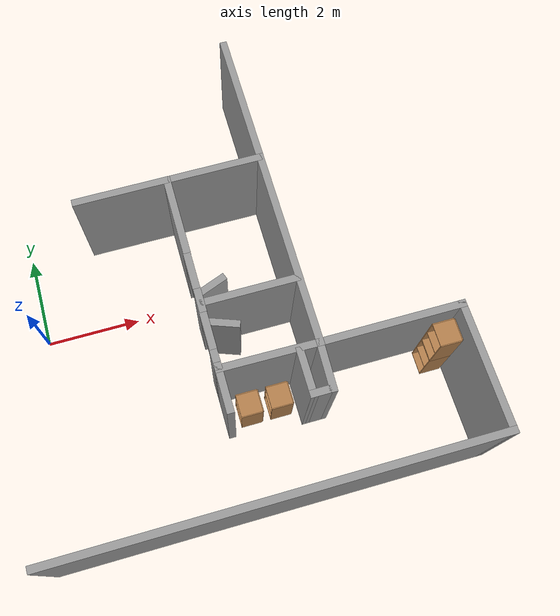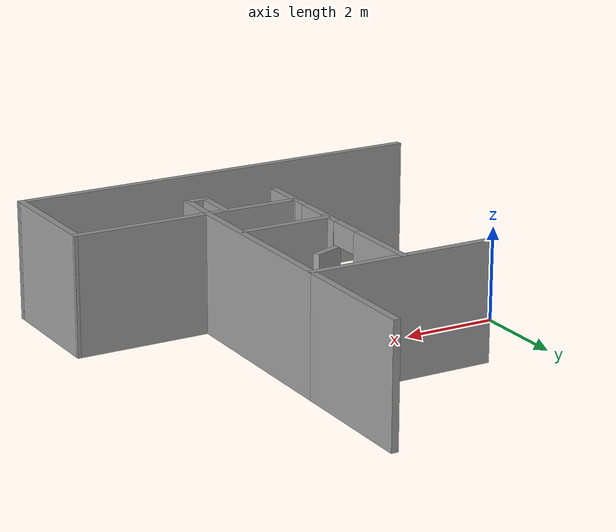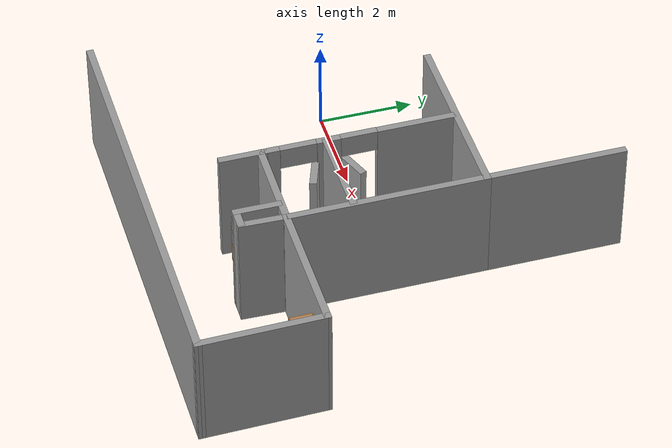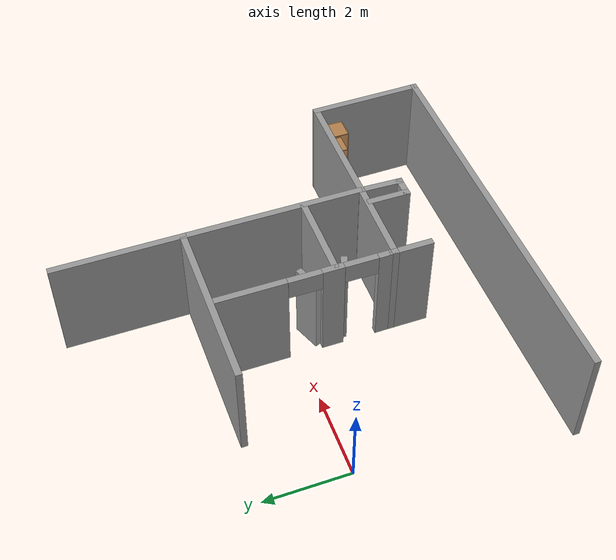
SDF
<sdf version="1.7">
 <world name="default">
  <model name="demo_clean">
   <link name="Wall_10">
    <pose>5.30351 3.31618 0 0 0 -1.5708</pose>
    <visual name="Wall_10_Visual">
     <pose>0 0 1.25 0 -0 0</pose>
     <geometry><box><size>3 0.15 2.5</size></box></geometry>
     <material>
      <script><uri>file://media/materials/scripts/gazebo.material</uri><name>Gazebo/Grey</name></script>
      <ambient>1 1 1 1</ambient>
      <shader type="pixel"/>
     </material>
     <meta><layer>0</layer></meta>
    </visual>
    <collision name="Wall_10_Collision">
     <pose>0 0 1.25 0 -0 0</pose>
     <geometry><box><size>3 0.15 2.5</size></box></geometry>
     <surface>
      <friction>
       <ode><mu>1</mu><mu2>1</mu2><fdir1>0 0 0</fdir1><slip1>0</slip1><slip2>0</slip2></ode>
       <torsional>
        <coefficient>1</coefficient>
        <patch_radius>0</patch_radius>
        <surface_radius>0</surface_radius>
        <use_patch_radius>1</use_patch_radius>
        <ode><slip>0</slip></ode>
       </torsional>
      </friction>
      <bounce><restitution_coefficient>0</restitution_coefficient><threshold>1e+06</threshold></bounce>
      <contact>
       <collide_without_contact>0</collide_without_contact>
       <collide_without_contact_bitmask>1</collide_without_contact_bitmask>
       <collide_bitmask>1</collide_bitmask>
       <ode>
        <soft_cfm>0</soft_cfm>
        <soft_erp>0.2</soft_erp>
        <kp>1e+13</kp>
        <kd>1</kd>
        <max_vel>0.01</max_vel>
        <min_depth>0</min_depth>
       </ode>
       <bullet>
        <split_impulse>1</split_impulse>
        <split_impulse_penetration_threshold>-0.01</split_impulse_penetration_threshold>
        <soft_cfm>0</soft_cfm>
        <soft_erp>0.2</soft_erp>
        <kp>1e+13</kp>
        <kd>1</kd>
       </bullet>
      </contact>
     </surface>
    </collision>
   </link>
   <link name="Wall_11">
    <pose>3.37851 1.89118 0 0 -0 3.14159</pose>
    <visual name="Wall_11_Visual">
     <pose>0 0 1.25 0 -0 0</pose>
     <geometry><box><size>4 0.15 2.5</size></box></geometry>
     <material>
      <script><uri>file://media/materials/scripts/gazebo.material</uri><name>Gazebo/Grey</name></script>
      <ambient>1 1 1 1</ambient>
      <shader type="pixel"/>
     </material>
     <meta><layer>0</layer></meta>
    </visual>
    <collision name="Wall_11_Collision">
     <pose>0 0 1.25 0 -0 0</pose>
     <geometry><box><size>4 0.15 2.5</size></box></geometry>
     <surface>
      <friction>
       <ode><mu>1</mu><mu2>1</mu2><fdir1>0 0 0</fdir1><slip1>0</slip1><slip2>0</slip2></ode>
       <torsional>
        <coefficient>1</coefficient>
        <patch_radius>0</patch_radius>
        <surface_radius>0</surface_radius>
        <use_patch_radius>1</use_patch_radius>
        <ode><slip>0</slip></ode>
       </torsional>
      </friction>
      <bounce><restitution_coefficient>0</restitution_coefficient><threshold>1e+06</threshold></bounce>
      <contact>
       <collide_without_contact>0</collide_without_contact>
       <collide_without_contact_bitmask>1</collide_without_contact_bitmask>
       <collide_bitmask>1</collide_bitmask>
       <ode>
        <soft_cfm>0</soft_cfm>
        <soft_erp>0.2</soft_erp>
        <kp>1e+13</kp>
        <kd>1</kd>
        <max_vel>0.01</max_vel>
        <min_depth>0</min_depth>
       </ode>
       <bullet>
        <split_impulse>1</split_impulse>
        <split_impulse_penetration_threshold>-0.01</split_impulse_penetration_threshold>
        <soft_cfm>0</soft_cfm>
        <soft_erp>0.2</soft_erp>
        <kp>1e+13</kp>
        <kd>1</kd>
       </bullet>
      </contact>
     </surface>
    </collision>
   </link>
   <link name="Wall_13">
    <pose>5.30351 -0.158824 0 0 0 -1.5708</pose>
    <visual name="Wall_13_Visual">
     <pose>0 0 1.25 0 -0 0</pose>
     <geometry><box><size>4.25 0.15 2.5</size></box></geometry>
     <material>
      <script><uri>file://media/materials/scripts/gazebo.material</uri><name>Gazebo/Grey</name></script>
      <ambient>1 1 1 1</ambient>
      <shader type="pixel"/>
     </material>
     <meta><layer>0</layer></meta>
    </visual>
    <collision name="Wall_13_Collision">
     <pose>0 0 1.25 0 -0 0</pose>
     <geometry><box><size>4.25 0.15 2.5</size></box></geometry>
     <surface>
      <friction>
       <ode><mu>1</mu><mu2>1</mu2><fdir1>0 0 0</fdir1><slip1>0</slip1><slip2>0</slip2></ode>
       <torsional>
        <coefficient>1</coefficient>
        <patch_radius>0</patch_radius>
        <surface_radius>0</surface_radius>
        <use_patch_radius>1</use_patch_radius>
        <ode><slip>0</slip></ode>
       </torsional>
      </friction>
      <bounce><restitution_coefficient>0</restitution_coefficient><threshold>1e+06</threshold></bounce>
      <contact>
       <collide_without_contact>0</collide_without_contact>
       <collide_without_contact_bitmask>1</collide_without_contact_bitmask>
       <collide_bitmask>1</collide_bitmask>
       <ode>
        <soft_cfm>0</soft_cfm>
        <soft_erp>0.2</soft_erp>
        <kp>1e+13</kp>
        <kd>1</kd>
        <max_vel>0.01</max_vel>
        <min_depth>0</min_depth>
       </ode>
       <bullet>
        <split_impulse>1</split_impulse>
        <split_impulse_penetration_threshold>-0.01</split_impulse_penetration_threshold>
        <soft_cfm>0</soft_cfm>
        <soft_erp>0.2</soft_erp>
        <kp>1e+13</kp>
        <kd>1</kd>
       </bullet>
      </contact>
     </surface>
    </collision>
   </link>
   <link name="Wall_14">
    <pose>6.72851 -2.20882 0 0 -0 0</pose>
    <visual name="Wall_14_Visual">
     <pose>0 0 1.25 0 -0 0</pose>
     <geometry><box><size>3 0.15 2.5</size></box></geometry>
     <material>
      <script><uri>file://media/materials/scripts/gazebo.material</uri><name>Gazebo/Grey</name></script>
      <ambient>1 1 1 1</ambient>
      <shader type="pixel"/>
     </material>
     <meta><layer>0</layer></meta>
    </visual>
    <collision name="Wall_14_Collision">
     <pose>0 0 1.25 0 -0 0</pose>
     <geometry><box><size>3 0.15 2.5</size></box></geometry>
     <surface>
      <friction>
       <ode><mu>1</mu><mu2>1</mu2><fdir1>0 0 0</fdir1><slip1>0</slip1><slip2>0</slip2></ode>
       <torsional>
        <coefficient>1</coefficient>
        <patch_radius>0</patch_radius>
        <surface_radius>0</surface_radius>
        <use_patch_radius>1</use_patch_radius>
        <ode><slip>0</slip></ode>
       </torsional>
      </friction>
      <bounce><restitution_coefficient>0</restitution_coefficient><threshold>1e+06</threshold></bounce>
      <contact>
       <collide_without_contact>0</collide_without_contact>
       <collide_without_contact_bitmask>1</collide_without_contact_bitmask>
       <collide_bitmask>1</collide_bitmask>
       <ode>
        <soft_cfm>0</soft_cfm>
        <soft_erp>0.2</soft_erp>
        <kp>1e+13</kp>
        <kd>1</kd>
        <max_vel>0.01</max_vel>
        <min_depth>0</min_depth>
       </ode>
       <bullet>
        <split_impulse>1</split_impulse>
        <split_impulse_penetration_threshold>-0.01</split_impulse_penetration_threshold>
        <soft_cfm>0</soft_cfm>
        <soft_erp>0.2</soft_erp>
        <kp>1e+13</kp>
        <kd>1</kd>
       </bullet>
      </contact>
     </surface>
    </collision>
   </link>
   <link name="Wall_15">
    <pose>8.16988 -3.47452 0 0 0 -1.55787</pose>
    <visual name="Wall_15_Visual">
     <pose>0 0 1.25 0 -0 0</pose>
     <geometry><box><size>2.6816 0.15 2.5</size></box></geometry>
     <material>
      <script><uri>file://media/materials/scripts/gazebo.material</uri><name>Gazebo/Grey</name></script>
      <ambient>1 1 1 1</ambient>
      <shader type="pixel"/>
     </material>
     <meta><layer>0</layer></meta>
    </visual>
    <collision name="Wall_15_Collision">
     <pose>0 0 1.25 0 -0 0</pose>
     <geometry><box><size>2.6816 0.15 2.5</size></box></geometry>
     <surface>
      <friction>
       <ode><mu>1</mu><mu2>1</mu2><fdir1>0 0 0</fdir1><slip1>0</slip1><slip2>0</slip2></ode>
       <torsional>
        <coefficient>1</coefficient>
        <patch_radius>0</patch_radius>
        <surface_radius>0</surface_radius>
        <use_patch_radius>1</use_patch_radius>
        <ode><slip>0</slip></ode>
       </torsional>
      </friction>
      <bounce><restitution_coefficient>0</restitution_coefficient><threshold>1e+06</threshold></bounce>
      <contact>
       <collide_without_contact>0</collide_without_contact>
       <collide_without_contact_bitmask>1</collide_without_contact_bitmask>
       <collide_bitmask>1</collide_bitmask>
       <ode>
        <soft_cfm>0</soft_cfm>
        <soft_erp>0.2</soft_erp>
        <kp>1e+13</kp>
        <kd>1</kd>
        <max_vel>0.01</max_vel>
        <min_depth>0</min_depth>
       </ode>
       <bullet>
        <split_impulse>1</split_impulse>
        <split_impulse_penetration_threshold>-0.01</split_impulse_penetration_threshold>
        <soft_cfm>0</soft_cfm>
        <soft_erp>0.2</soft_erp>
        <kp>1e+13</kp>
        <kd>1</kd>
       </bullet>
      </contact>
     </surface>
    </collision>
   </link>
   <link name="Wall_16">
    <pose>3.76125 -4.74021 0 0 -0 3.14159</pose>
    <visual name="Wall_16_Visual">
     <pose>0 0 1.25 0 -0 0</pose>
     <geometry><box><size>9 0.15 2.5</size></box></geometry>
     <material>
      <script><uri>file://media/materials/scripts/gazebo.material</uri><name>Gazebo/Grey</name></script>
      <ambient>1 1 1 1</ambient>
      <shader type="pixel"/>
     </material>
     <meta><layer>0</layer></meta>
    </visual>
    <collision name="Wall_16_Collision">
     <pose>0 0 1.25 0 -0 0</pose>
     <geometry><box><size>9 0.15 2.5</size></box></geometry>
     <surface>
      <friction>
       <ode><mu>1</mu><mu2>1</mu2><fdir1>0 0 0</fdir1><slip1>0</slip1><slip2>0</slip2></ode>
       <torsional>
        <coefficient>1</coefficient>
        <patch_radius>0</patch_radius>
        <surface_radius>0</surface_radius>
        <use_patch_radius>1</use_patch_radius>
        <ode><slip>0</slip></ode>
       </torsional>
      </friction>
      <bounce><restitution_coefficient>0</restitution_coefficient><threshold>1e+06</threshold></bounce>
      <contact>
       <collide_without_contact>0</collide_without_contact>
       <collide_without_contact_bitmask>1</collide_without_contact_bitmask>
       <collide_bitmask>1</collide_bitmask>
       <ode>
        <soft_cfm>0</soft_cfm>
        <soft_erp>0.2</soft_erp>
        <kp>1e+13</kp>
        <kd>1</kd>
        <max_vel>0.01</max_vel>
        <min_depth>0</min_depth>
       </ode>
       <bullet>
        <split_impulse>1</split_impulse>
        <split_impulse_penetration_threshold>-0.01</split_impulse_penetration_threshold>
        <soft_cfm>0</soft_cfm>
        <soft_erp>0.2</soft_erp>
        <kp>1e+13</kp>
        <kd>1</kd>
       </bullet>
      </contact>
     </surface>
    </collision>
   </link>
   <link name="Wall_21_clone_0_clone_0_clone_clone_clone_clone_clone_clone_clone_clone">
    <pose>3.68306 -1.18793 -0.23202 0 -0 2.79384</pose>
    <inertial>
     <inertia><ixx>0</ixx><ixy>0</ixy><ixz>0</ixz><iyy>0</iyy><iyz>0</iyz><izz>0</izz></inertia>
     <mass>0</mass>
    </inertial>
    <gravity>0</gravity>
    <visual name="Wall_21_Visual">
     <pose>0 0 1.25 0 -0 0</pose>
     <geometry><box><size>0.663949 0.15 1.96033</size></box></geometry>
     <material>
      <script><uri>file://media/materials/scripts/gazebo.material</uri><name>Gazebo/Grey</name></script>
      <ambient>1 1 1 1</ambient>
      <shader type="pixel"><normal_map>__default__</normal_map></shader>
      <diffuse>0.7 0.7 0.7 1</diffuse>
      <specular>0.01 0.01 0.01 1</specular>
      <emissive>0 0 0 1</emissive>
     </material>
     <meta><layer>0</layer></meta>
    </visual>
    <collision name="Wall_21_Collision">
     <pose>0 0 1.25 0 -0 0</pose>
     <geometry><box><size>0.663949 0.15 1.96033</size></box></geometry>
     <surface>
      <friction>
       <ode><mu>1</mu><mu2>1</mu2><fdir1>0 0 0</fdir1><slip1>0</slip1><slip2>0</slip2></ode>
       <torsional>
        <coefficient>1</coefficient>
        <patch_radius>0</patch_radius>
        <surface_radius>0</surface_radius>
        <use_patch_radius>1</use_patch_radius>
        <ode><slip>0</slip></ode>
       </torsional>
      </friction>
      <bounce><restitution_coefficient>0</restitution_coefficient><threshold>1e+06</threshold></bounce>
      <contact>
       <collide_without_contact>0</collide_without_contact>
       <collide_without_contact_bitmask>1</collide_without_contact_bitmask>
       <collide_bitmask>1</collide_bitmask>
       <ode>
        <soft_cfm>0</soft_cfm>
        <soft_erp>0.2</soft_erp>
        <kp>1e+13</kp>
        <kd>1</kd>
        <max_vel>0.01</max_vel>
        <min_depth>0</min_depth>
       </ode>
       <bullet>
        <split_impulse>1</split_impulse>
        <split_impulse_penetration_threshold>-0.01</split_impulse_penetration_threshold>
        <soft_cfm>0</soft_cfm>
        <soft_erp>0.2</soft_erp>
        <kp>1e+13</kp>
        <kd>1</kd>
       </bullet>
      </contact>
     </surface>
    </collision>
   </link>
   <link name="Wall_21_clone_0_clone_0_clone_clone_clone_clone_clone_clone_clone_clone_clone_clone">
    <pose>3.65792 -0.364043 -0.23202 0 0 -2.77941</pose>
    <inertial>
     <inertia><ixx>0</ixx><ixy>0</ixy><ixz>0</ixz><iyy>0</iyy><iyz>0</iyz><izz>0</izz></inertia>
     <mass>0</mass>
    </inertial>
    <gravity>0</gravity>
    <visual name="Wall_21_Visual">
     <pose>0 0 1.25 0 -0 0</pose>
     <geometry><box><size>0.663949 0.15 1.96033</size></box></geometry>
     <material>
      <script><uri>file://media/materials/scripts/gazebo.material</uri><name>Gazebo/Grey</name></script>
      <ambient>1 1 1 1</ambient>
      <shader type="pixel"><normal_map>__default__</normal_map></shader>
      <diffuse>0.7 0.7 0.7 1</diffuse>
      <specular>0.01 0.01 0.01 1</specular>
      <emissive>0 0 0 1</emissive>
     </material>
     <meta><layer>0</layer></meta>
    </visual>
    <collision name="Wall_21_Collision">
     <pose>0 0 1.25 0 -0 0</pose>
     <geometry><box><size>0.663949 0.15 1.96033</size></box></geometry>
     <surface>
      <friction>
       <ode><mu>1</mu><mu2>1</mu2><fdir1>0 0 0</fdir1><slip1>0</slip1><slip2>0</slip2></ode>
       <torsional>
        <coefficient>1</coefficient>
        <patch_radius>0</patch_radius>
        <surface_radius>0</surface_radius>
        <use_patch_radius>1</use_patch_radius>
        <ode><slip>0</slip></ode>
       </torsional>
      </friction>
      <bounce><restitution_coefficient>0</restitution_coefficient><threshold>1e+06</threshold></bounce>
      <contact>
       <collide_without_contact>0</collide_without_contact>
       <collide_without_contact_bitmask>1</collide_without_contact_bitmask>
       <collide_bitmask>1</collide_bitmask>
       <ode>
        <soft_cfm>0</soft_cfm>
        <soft_erp>0.2</soft_erp>
        <kp>1e+13</kp>
        <kd>1</kd>
        <max_vel>0.01</max_vel>
        <min_depth>0</min_depth>
       </ode>
       <bullet>
        <split_impulse>1</split_impulse>
        <split_impulse_penetration_threshold>-0.01</split_impulse_penetration_threshold>
        <soft_cfm>0</soft_cfm>
        <soft_erp>0.2</soft_erp>
        <kp>1e+13</kp>
        <kd>1</kd>
       </bullet>
      </contact>
     </surface>
    </collision>
   </link>
   <link name="Wall_28_clone_clone_clone_clone">
    <pose>3.33099 -1.42343 1.01168 0 0 -1.57004</pose>
    <inertial>
     <inertia><ixx>0</ixx><ixy>0</ixy><ixz>0</ixz><iyy>0</iyy><iyz>0</iyz><izz>0</izz></inertia>
     <mass>0</mass>
    </inertial>
    <gravity>0</gravity>
    <visual name="Wall_28_Visual">
     <pose>0 0 1.25 0 -0 0</pose>
     <geometry><box><size>0.765639 0.15 0.476648</size></box></geometry>
     <material>
      <script><uri>file://media/materials/scripts/gazebo.material</uri><name>Gazebo/Grey</name></script>
      <ambient>1 1 1 1</ambient>
      <shader type="pixel"><normal_map>__default__</normal_map></shader>
     </material>
     <meta><layer>0</layer></meta>
    </visual>
    <collision name="Wall_28_Collision">
     <pose>0 0 1.25 0 -0 0</pose>
     <geometry><box><size>0.765639 0.15 0.476648</size></box></geometry>
     <surface>
      <friction>
       <ode><mu>1</mu><mu2>1</mu2><fdir1>0 0 0</fdir1><slip1>0</slip1><slip2>0</slip2></ode>
       <torsional>
        <coefficient>1</coefficient>
        <patch_radius>0</patch_radius>
        <surface_radius>0</surface_radius>
        <use_patch_radius>1</use_patch_radius>
        <ode><slip>0</slip></ode>
       </torsional>
      </friction>
      <bounce><restitution_coefficient>0</restitution_coefficient><threshold>1e+06</threshold></bounce>
      <contact>
       <collide_without_contact>0</collide_without_contact>
       <collide_without_contact_bitmask>1</collide_without_contact_bitmask>
       <collide_bitmask>1</collide_bitmask>
       <ode>
        <soft_cfm>0</soft_cfm>
        <soft_erp>0.2</soft_erp>
        <kp>1e+13</kp>
        <kd>1</kd>
        <max_vel>0.01</max_vel>
        <min_depth>0</min_depth>
       </ode>
       <bullet>
        <split_impulse>1</split_impulse>
        <split_impulse_penetration_threshold>-0.01</split_impulse_penetration_threshold>
        <soft_cfm>0</soft_cfm>
        <soft_erp>0.2</soft_erp>
        <kp>1e+13</kp>
        <kd>1</kd>
       </bullet>
      </contact>
     </surface>
    </collision>
   </link>
   <link name="Wall_28_clone_clone_clone_clone_clone">
    <pose>3.33099 -0.160303 1.01168 0 0 -1.57004</pose>
    <inertial>
     <inertia><ixx>0</ixx><ixy>0</ixy><ixz>0</ixz><iyy>0</iyy><iyz>0</iyz><izz>0</izz></inertia>
     <mass>0</mass>
    </inertial>
    <gravity>0</gravity>
    <visual name="Wall_28_Visual">
     <pose>0 0 1.25 0 -0 0</pose>
     <geometry><box><size>0.765639 0.15 0.476648</size></box></geometry>
     <material>
      <script><uri>file://media/materials/scripts/gazebo.material</uri><name>Gazebo/Grey</name></script>
      <ambient>1 1 1 1</ambient>
      <shader type="pixel"><normal_map>__default__</normal_map></shader>
     </material>
     <meta><layer>0</layer></meta>
    </visual>
    <collision name="Wall_28_Collision">
     <pose>0 0 1.25 0 -0 0</pose>
     <geometry><box><size>0.765639 0.15 0.476648</size></box></geometry>
     <surface>
      <friction>
       <ode><mu>1</mu><mu2>1</mu2><fdir1>0 0 0</fdir1><slip1>0</slip1><slip2>0</slip2></ode>
       <torsional>
        <coefficient>1</coefficient>
        <patch_radius>0</patch_radius>
        <surface_radius>0</surface_radius>
        <use_patch_radius>1</use_patch_radius>
        <ode><slip>0</slip></ode>
       </torsional>
      </friction>
      <bounce><restitution_coefficient>0</restitution_coefficient><threshold>1e+06</threshold></bounce>
      <contact>
       <collide_without_contact>0</collide_without_contact>
       <collide_without_contact_bitmask>1</collide_without_contact_bitmask>
       <collide_bitmask>1</collide_bitmask>
       <ode>
        <soft_cfm>0</soft_cfm>
        <soft_erp>0.2</soft_erp>
        <kp>1e+13</kp>
        <kd>1</kd>
        <max_vel>0.01</max_vel>
        <min_depth>0</min_depth>
       </ode>
       <bullet>
        <split_impulse>1</split_impulse>
        <split_impulse_penetration_threshold>-0.01</split_impulse_penetration_threshold>
        <soft_cfm>0</soft_cfm>
        <soft_erp>0.2</soft_erp>
        <kp>1e+13</kp>
        <kd>1</kd>
       </bullet>
      </contact>
     </surface>
    </collision>
   </link>
   <link name="Wall_30">
    <pose>3.33603 -0.791518 0 0 0 -1.5708</pose>
    <visual name="Wall_30_Visual">
     <pose>0 0 1.25 0 -0 0</pose>
     <geometry><box><size>0.5 0.15 2.5</size></box></geometry>
     <material>
      <script><uri>file://media/materials/scripts/gazebo.material</uri><name>Gazebo/Grey</name></script>
      <ambient>1 1 1 1</ambient>
      <shader type="pixel"/>
     </material>
     <meta><layer>0</layer></meta>
    </visual>
    <collision name="Wall_30_Collision">
     <pose>0 0 1.25 0 -0 0</pose>
     <geometry><box><size>0.5 0.15 2.5</size></box></geometry>
     <surface>
      <friction>
       <ode><mu>1</mu><mu2>1</mu2><fdir1>0 0 0</fdir1><slip1>0</slip1><slip2>0</slip2></ode>
       <torsional>
        <coefficient>1</coefficient>
        <patch_radius>0</patch_radius>
        <surface_radius>0</surface_radius>
        <use_patch_radius>1</use_patch_radius>
        <ode><slip>0</slip></ode>
       </torsional>
      </friction>
      <bounce><restitution_coefficient>0</restitution_coefficient><threshold>1e+06</threshold></bounce>
      <contact>
       <collide_without_contact>0</collide_without_contact>
       <collide_without_contact_bitmask>1</collide_without_contact_bitmask>
       <collide_bitmask>1</collide_bitmask>
       <ode>
        <soft_cfm>0</soft_cfm>
        <soft_erp>0.2</soft_erp>
        <kp>1e+13</kp>
        <kd>1</kd>
        <max_vel>0.01</max_vel>
        <min_depth>0</min_depth>
       </ode>
       <bullet>
        <split_impulse>1</split_impulse>
        <split_impulse_penetration_threshold>-0.01</split_impulse_penetration_threshold>
        <soft_cfm>0</soft_cfm>
        <soft_erp>0.2</soft_erp>
        <kp>1e+13</kp>
        <kd>1</kd>
       </bullet>
      </contact>
     </surface>
    </collision>
   </link>
   <link name="Wall_33">
    <pose>4.32187 -0.846909 0 0 -0 3.14159</pose>
    <visual name="Wall_33_Visual">
     <pose>0 0 1.25 0 -0 0</pose>
     <geometry><box><size>2 0.15 2.5</size></box></geometry>
     <material>
      <script><uri>file://media/materials/scripts/gazebo.material</uri><name>Gazebo/Grey</name></script>
      <ambient>1 1 1 1</ambient>
      <shader type="pixel"/>
     </material>
     <meta><layer>0</layer></meta>
    </visual>
    <collision name="Wall_33_Collision">
     <pose>0 0 1.25 0 -0 0</pose>
     <geometry><box><size>2 0.15 2.5</size></box></geometry>
     <surface>
      <friction>
       <ode><mu>1</mu><mu2>1</mu2><fdir1>0 0 0</fdir1><slip1>0</slip1><slip2>0</slip2></ode>
       <torsional>
        <coefficient>1</coefficient>
        <patch_radius>0</patch_radius>
        <surface_radius>0</surface_radius>
        <use_patch_radius>1</use_patch_radius>
        <ode><slip>0</slip></ode>
       </torsional>
      </friction>
      <bounce><restitution_coefficient>0</restitution_coefficient><threshold>1e+06</threshold></bounce>
      <contact>
       <collide_without_contact>0</collide_without_contact>
       <collide_without_contact_bitmask>1</collide_without_contact_bitmask>
       <collide_bitmask>1</collide_bitmask>
       <ode>
        <soft_cfm>0</soft_cfm>
        <soft_erp>0.2</soft_erp>
        <kp>1e+13</kp>
        <kd>1</kd>
        <max_vel>0.01</max_vel>
        <min_depth>0</min_depth>
       </ode>
       <bullet>
        <split_impulse>1</split_impulse>
        <split_impulse_penetration_threshold>-0.01</split_impulse_penetration_threshold>
        <soft_cfm>0</soft_cfm>
        <soft_erp>0.2</soft_erp>
        <kp>1e+13</kp>
        <kd>1</kd>
       </bullet>
      </contact>
     </surface>
    </collision>
   </link>
   <link name="Wall_35">
    <pose>4.31686 -2.19973 0 0 -0 3.13123</pose>
    <visual name="Wall_35_Visual">
     <pose>0 0 1.25 0 -0 0</pose>
     <geometry><box><size>2.12444 0.15 2.5</size></box></geometry>
     <material>
      <script><uri>file://media/materials/scripts/gazebo.material</uri><name>Gazebo/Grey</name></script>
      <ambient>1 1 1 1</ambient>
      <shader type="pixel"/>
     </material>
     <meta><layer>0</layer></meta>
    </visual>
    <collision name="Wall_35_Collision">
     <pose>0 0 1.25 0 -0 0</pose>
     <geometry><box><size>2.12444 0.15 2.5</size></box></geometry>
     <surface>
      <friction>
       <ode><mu>1</mu><mu2>1</mu2><fdir1>0 0 0</fdir1><slip1>0</slip1><slip2>0</slip2></ode>
       <torsional>
        <coefficient>1</coefficient>
        <patch_radius>0</patch_radius>
        <surface_radius>0</surface_radius>
        <use_patch_radius>1</use_patch_radius>
        <ode><slip>0</slip></ode>
       </torsional>
      </friction>
      <bounce><restitution_coefficient>0</restitution_coefficient><threshold>1e+06</threshold></bounce>
      <contact>
       <collide_without_contact>0</collide_without_contact>
       <collide_without_contact_bitmask>1</collide_without_contact_bitmask>
       <collide_bitmask>1</collide_bitmask>
       <ode>
        <soft_cfm>0</soft_cfm>
        <soft_erp>0.2</soft_erp>
        <kp>1e+13</kp>
        <kd>1</kd>
        <max_vel>0.01</max_vel>
        <min_depth>0</min_depth>
       </ode>
       <bullet>
        <split_impulse>1</split_impulse>
        <split_impulse_penetration_threshold>-0.01</split_impulse_penetration_threshold>
        <soft_cfm>0</soft_cfm>
        <soft_erp>0.2</soft_erp>
        <kp>1e+13</kp>
        <kd>1</kd>
       </bullet>
      </contact>
     </surface>
    </collision>
   </link>
   <link name="Wall_40">
    <pose>4.89119 -2.69073 0 0 0 -1.57324</pose>
    <visual name="Wall_40_Visual">
     <pose>0 0 1.25 0 -0 0</pose>
     <geometry><box><size>1 0.15 2.5</size></box></geometry>
     <material>
      <script><uri>file://media/materials/scripts/gazebo.material</uri><name>Gazebo/Grey</name></script>
      <ambient>1 1 1 1</ambient>
      <shader type="pixel"/>
     </material>
     <meta><layer>0</layer></meta>
    </visual>
    <collision name="Wall_40_Collision">
     <pose>0 0 1.25 0 -0 0</pose>
     <geometry><box><size>1 0.15 2.5</size></box></geometry>
     <surface>
      <friction>
       <ode><mu>1</mu><mu2>1</mu2><fdir1>0 0 0</fdir1><slip1>0</slip1><slip2>0</slip2></ode>
       <torsional>
        <coefficient>1</coefficient>
        <patch_radius>0</patch_radius>
        <surface_radius>0</surface_radius>
        <use_patch_radius>1</use_patch_radius>
        <ode><slip>0</slip></ode>
       </torsional>
      </friction>
      <bounce><restitution_coefficient>0</restitution_coefficient><threshold>1e+06</threshold></bounce>
      <contact>
       <collide_without_contact>0</collide_without_contact>
       <collide_without_contact_bitmask>1</collide_without_contact_bitmask>
       <collide_bitmask>1</collide_bitmask>
       <ode>
        <soft_cfm>0</soft_cfm>
        <soft_erp>0.2</soft_erp>
        <kp>1e+13</kp>
        <kd>1</kd>
        <max_vel>0.01</max_vel>
        <min_depth>0</min_depth>
       </ode>
       <bullet>
        <split_impulse>1</split_impulse>
        <split_impulse_penetration_threshold>-0.01</split_impulse_penetration_threshold>
        <soft_cfm>0</soft_cfm>
        <soft_erp>0.2</soft_erp>
        <kp>1e+13</kp>
        <kd>1</kd>
       </bullet>
      </contact>
     </surface>
    </collision>
   </link>
   <link name="Wall_41">
    <pose>5.06619 -3.11573 0 0 -0 0</pose>
    <visual name="Wall_41_Visual">
     <pose>0 0 1.25 0 -0 0</pose>
     <geometry><box><size>0.5 0.15 2.5</size></box></geometry>
     <material>
      <script><uri>file://media/materials/scripts/gazebo.material</uri><name>Gazebo/Grey</name></script>
      <ambient>1 1 1 1</ambient>
      <shader type="pixel"/>
     </material>
     <meta><layer>0</layer></meta>
    </visual>
    <collision name="Wall_41_Collision">
     <pose>0 0 1.25 0 -0 0</pose>
     <geometry><box><size>0.5 0.15 2.5</size></box></geometry>
     <surface>
      <friction>
       <ode><mu>1</mu><mu2>1</mu2><fdir1>0 0 0</fdir1><slip1>0</slip1><slip2>0</slip2></ode>
       <torsional>
        <coefficient>1</coefficient>
        <patch_radius>0</patch_radius>
        <surface_radius>0</surface_radius>
        <use_patch_radius>1</use_patch_radius>
        <ode><slip>0</slip></ode>
       </torsional>
      </friction>
      <bounce><restitution_coefficient>0</restitution_coefficient><threshold>1e+06</threshold></bounce>
      <contact>
       <collide_without_contact>0</collide_without_contact>
       <collide_without_contact_bitmask>1</collide_without_contact_bitmask>
       <collide_bitmask>1</collide_bitmask>
       <ode>
        <soft_cfm>0</soft_cfm>
        <soft_erp>0.2</soft_erp>
        <kp>1e+13</kp>
        <kd>1</kd>
        <max_vel>0.01</max_vel>
        <min_depth>0</min_depth>
       </ode>
       <bullet>
        <split_impulse>1</split_impulse>
        <split_impulse_penetration_threshold>-0.01</split_impulse_penetration_threshold>
        <soft_cfm>0</soft_cfm>
        <soft_erp>0.2</soft_erp>
        <kp>1e+13</kp>
        <kd>1</kd>
       </bullet>
      </contact>
     </surface>
    </collision>
   </link>
   <link name="Wall_42">
    <pose>5.28364 -2.66264 0 0 -0 1.53905</pose>
    <visual name="Wall_42_Visual">
     <pose>0 0 1.25 0 -0 0</pose>
     <geometry><box><size>1.05905 0.15 2.5</size></box></geometry>
     <material>
      <script><uri>file://media/materials/scripts/gazebo.material</uri><name>Gazebo/Grey</name></script>
      <ambient>1 1 1 1</ambient>
      <shader type="pixel"/>
     </material>
     <meta><layer>0</layer></meta>
    </visual>
    <collision name="Wall_42_Collision">
     <pose>0 0 1.25 0 -0 0</pose>
     <geometry><box><size>1.05905 0.15 2.5</size></box></geometry>
     <surface>
      <friction>
       <ode><mu>1</mu><mu2>1</mu2><fdir1>0 0 0</fdir1><slip1>0</slip1><slip2>0</slip2></ode>
       <torsional>
        <coefficient>1</coefficient>
        <patch_radius>0</patch_radius>
        <surface_radius>0</surface_radius>
        <use_patch_radius>1</use_patch_radius>
        <ode><slip>0</slip></ode>
       </torsional>
      </friction>
      <bounce><restitution_coefficient>0</restitution_coefficient><threshold>1e+06</threshold></bounce>
      <contact>
       <collide_without_contact>0</collide_without_contact>
       <collide_without_contact_bitmask>1</collide_without_contact_bitmask>
       <collide_bitmask>1</collide_bitmask>
       <ode>
        <soft_cfm>0</soft_cfm>
        <soft_erp>0.2</soft_erp>
        <kp>1e+13</kp>
        <kd>1</kd>
        <max_vel>0.01</max_vel>
        <min_depth>0</min_depth>
       </ode>
       <bullet>
        <split_impulse>1</split_impulse>
        <split_impulse_penetration_threshold>-0.01</split_impulse_penetration_threshold>
        <soft_cfm>0</soft_cfm>
        <soft_erp>0.2</soft_erp>
        <kp>1e+13</kp>
        <kd>1</kd>
       </bullet>
      </contact>
     </surface>
    </collision>
   </link>
   <link name="Wall_46">
    <pose>3.33603 1.08929 0 0 0 -1.5708</pose>
    <visual name="Wall_46_Visual">
     <pose>0 0 1.25 0 -0 0</pose>
     <geometry><box><size>1.75 0.15 2.5</size></box></geometry>
     <material>
      <script><uri>file://media/materials/scripts/gazebo.material</uri><name>Gazebo/Grey</name></script>
      <ambient>1 1 1 1</ambient>
      <shader type="pixel"/>
     </material>
     <meta><layer>0</layer></meta>
    </visual>
    <collision name="Wall_46_Collision">
     <pose>0 0 1.25 0 -0 0</pose>
     <geometry><box><size>1.75 0.15 2.5</size></box></geometry>
     <surface>
      <friction>
       <ode><mu>1</mu><mu2>1</mu2><fdir1>0 0 0</fdir1><slip1>0</slip1><slip2>0</slip2></ode>
       <torsional>
        <coefficient>1</coefficient>
        <patch_radius>0</patch_radius>
        <surface_radius>0</surface_radius>
        <use_patch_radius>1</use_patch_radius>
        <ode><slip>0</slip></ode>
       </torsional>
      </friction>
      <bounce><restitution_coefficient>0</restitution_coefficient><threshold>1e+06</threshold></bounce>
      <contact>
       <collide_without_contact>0</collide_without_contact>
       <collide_without_contact_bitmask>1</collide_without_contact_bitmask>
       <collide_bitmask>1</collide_bitmask>
       <ode>
        <soft_cfm>0</soft_cfm>
        <soft_erp>0.2</soft_erp>
        <kp>1e+13</kp>
        <kd>1</kd>
        <max_vel>0.01</max_vel>
        <min_depth>0</min_depth>
       </ode>
       <bullet>
        <split_impulse>1</split_impulse>
        <split_impulse_penetration_threshold>-0.01</split_impulse_penetration_threshold>
        <soft_cfm>0</soft_cfm>
        <soft_erp>0.2</soft_erp>
        <kp>1e+13</kp>
        <kd>1</kd>
       </bullet>
      </contact>
     </surface>
    </collision>
   </link>
   <link name="Wall_48">
    <pose>3.33073 -2.13943 0 0 -0 0</pose>
    <visual name="Wall_48_Visual">
     <pose>0 0 1.25 0 -0 0</pose>
     <geometry><box><size>0.15 0.15 2.5</size></box></geometry>
     <material>
      <script><uri>file://media/materials/scripts/gazebo.material</uri><name>Gazebo/Grey</name></script>
      <ambient>1 1 1 1</ambient>
      <shader type="pixel"/>
     </material>
     <meta><layer>0</layer></meta>
    </visual>
    <collision name="Wall_48_Collision">
     <pose>0 0 1.25 0 -0 0</pose>
     <geometry><box><size>0.15 0.15 2.5</size></box></geometry>
     <surface>
      <friction>
       <ode><mu>1</mu><mu2>1</mu2><fdir1>0 0 0</fdir1><slip1>0</slip1><slip2>0</slip2></ode>
       <torsional>
        <coefficient>1</coefficient>
        <patch_radius>0</patch_radius>
        <surface_radius>0</surface_radius>
        <use_patch_radius>1</use_patch_radius>
        <ode><slip>0</slip></ode>
       </torsional>
      </friction>
      <bounce><restitution_coefficient>0</restitution_coefficient><threshold>1e+06</threshold></bounce>
      <contact>
       <collide_without_contact>0</collide_without_contact>
       <collide_without_contact_bitmask>1</collide_without_contact_bitmask>
       <collide_bitmask>1</collide_bitmask>
       <ode>
        <soft_cfm>0</soft_cfm>
        <soft_erp>0.2</soft_erp>
        <kp>1e+13</kp>
        <kd>1</kd>
        <max_vel>0.01</max_vel>
        <min_depth>0</min_depth>
       </ode>
       <bullet>
        <split_impulse>1</split_impulse>
        <split_impulse_penetration_threshold>-0.01</split_impulse_penetration_threshold>
        <soft_cfm>0</soft_cfm>
        <soft_erp>0.2</soft_erp>
        <kp>1e+13</kp>
        <kd>1</kd>
       </bullet>
      </contact>
     </surface>
    </collision>
   </link>
   <link name="Wall_49">
    <pose>3.33073 -2.56443 0 0 0 -1.5708</pose>
    <visual name="Wall_49_Visual">
     <pose>0 0 1.25 0 -0 0</pose>
     <geometry><box><size>1 0.15 2.5</size></box></geometry>
     <material>
      <script><uri>file://media/materials/scripts/gazebo.material</uri><name>Gazebo/Grey</name></script>
      <ambient>1 1 1 1</ambient>
      <shader type="pixel"/>
     </material>
     <meta><layer>0</layer></meta>
    </visual>
    <collision name="Wall_49_Collision">
     <pose>0 0 1.25 0 -0 0</pose>
     <geometry><box><size>1 0.15 2.5</size></box></geometry>
     <surface>
      <friction>
       <ode><mu>1</mu><mu2>1</mu2><fdir1>0 0 0</fdir1><slip1>0</slip1><slip2>0</slip2></ode>
       <torsional>
        <coefficient>1</coefficient>
        <patch_radius>0</patch_radius>
        <surface_radius>0</surface_radius>
        <use_patch_radius>1</use_patch_radius>
        <ode><slip>0</slip></ode>
       </torsional>
      </friction>
      <bounce><restitution_coefficient>0</restitution_coefficient><threshold>1e+06</threshold></bounce>
      <contact>
       <collide_without_contact>0</collide_without_contact>
       <collide_without_contact_bitmask>1</collide_without_contact_bitmask>
       <collide_bitmask>1</collide_bitmask>
       <ode>
        <soft_cfm>0</soft_cfm>
        <soft_erp>0.2</soft_erp>
        <kp>1e+13</kp>
        <kd>1</kd>
        <max_vel>0.01</max_vel>
        <min_depth>0</min_depth>
       </ode>
       <bullet>
        <split_impulse>1</split_impulse>
        <split_impulse_penetration_threshold>-0.01</split_impulse_penetration_threshold>
        <soft_cfm>0</soft_cfm>
        <soft_erp>0.2</soft_erp>
        <kp>1e+13</kp>
        <kd>1</kd>
       </bullet>
      </contact>
     </surface>
    </collision>
   </link>
   <link name="Wall_51">
    <pose>3.3292 -2.00839 0 0 0 -1.55914</pose>
    <visual name="Wall_51_Visual">
     <pose>0 0 1.25 0 -0 0</pose>
     <geometry><box><size>0.412102 0.15 2.5</size></box></geometry>
     <material>
      <script><uri>file://media/materials/scripts/gazebo.material</uri><name>Gazebo/Grey</name></script>
      <ambient>1 1 1 1</ambient>
      <shader type="pixel"/>
     </material>
     <meta><layer>0</layer></meta>
    </visual>
    <collision name="Wall_51_Collision">
     <pose>0 0 1.25 0 -0 0</pose>
     <geometry><box><size>0.412102 0.15 2.5</size></box></geometry>
     <surface>
      <friction>
       <ode><mu>1</mu><mu2>1</mu2><fdir1>0 0 0</fdir1><slip1>0</slip1><slip2>0</slip2></ode>
       <torsional>
        <coefficient>1</coefficient>
        <patch_radius>0</patch_radius>
        <surface_radius>0</surface_radius>
        <use_patch_radius>1</use_patch_radius>
        <ode><slip>0</slip></ode>
       </torsional>
      </friction>
      <bounce><restitution_coefficient>0</restitution_coefficient><threshold>1e+06</threshold></bounce>
      <contact>
       <collide_without_contact>0</collide_without_contact>
       <collide_without_contact_bitmask>1</collide_without_contact_bitmask>
       <collide_bitmask>1</collide_bitmask>
       <ode>
        <soft_cfm>0</soft_cfm>
        <soft_erp>0.2</soft_erp>
        <kp>1e+13</kp>
        <kd>1</kd>
        <max_vel>0.01</max_vel>
        <min_depth>0</min_depth>
       </ode>
       <bullet>
        <split_impulse>1</split_impulse>
        <split_impulse_penetration_threshold>-0.01</split_impulse_penetration_threshold>
        <soft_cfm>0</soft_cfm>
        <soft_erp>0.2</soft_erp>
        <kp>1e+13</kp>
        <kd>1</kd>
       </bullet>
      </contact>
     </surface>
    </collision>
   </link>
   <static>1</static>
  </model>
  <model name="cabinet_clone">
   <static>1</static>
   <link name="cabinet_bottom_plate">
    <inertial>
     <pose>0 0 -1 0 -0 0</pose>
     <inertia><ixx>2.05</ixx><ixy>0</ixy><ixz>0</ixz><iyy>2.05</iyy><iyz>0</iyz><izz>2.05</izz></inertia>
     <mass>25</mass>
    </inertial>
    <collision name="cabinet_bottom_plate_geom">
     <pose>0 0 0.01 0 -0 0</pose>
     <geometry><box><size>0.45 0.45 0.02</size></box></geometry>
    </collision>
    <visual name="cabinet_bottom_plate_geom_visual">
     <pose>0 0 0.01 0 -0 0</pose>
     <geometry><box><size>0.45 0.45 0.02</size></box></geometry>
     <material>
      <script><uri>file://media/materials/scripts/gazebo.material</uri><name>Gazebo/Wood</name></script>
     </material>
    </visual>
    <collision name="cabinet_bottom_plate_geom_cabinet_back_plate">
     <pose>0.235 0 0.51 0 -0 0</pose>
     <geometry><box><size>0.02 0.45 1.02</size></box></geometry>
    </collision>
    <visual name="cabinet_bottom_plate_geom_cabinet_back_plate_visual">
     <pose>0.235 0 0.51 0 -0 0</pose>
     <geometry><box><size>0.02 0.45 1.02</size></box></geometry>
     <material>
      <script><uri>file://media/materials/scripts/gazebo.material</uri><name>Gazebo/Wood</name></script>
     </material>
    </visual>
    <collision name="cabinet_bottom_plate_geom_cabinet_left_plate">
     <pose>0 0.235 0.51 0 -0 0</pose>
     <geometry><box><size>0.45 0.02 1.02</size></box></geometry>
    </collision>
    <visual name="cabinet_bottom_plate_geom_cabinet_left_plate_visual">
     <pose>0 0.235 0.51 0 -0 0</pose>
     <geometry><box><size>0.45 0.02 1.02</size></box></geometry>
     <material>
      <script><uri>file://media/materials/scripts/gazebo.material</uri><name>Gazebo/Wood</name></script>
     </material>
    </visual>
    <collision name="cabinet_bottom_plate_geom_cabinet_middle_plate">
     <pose>0 0 0.51 0 -0 0</pose>
     <geometry><box><size>0.45 0.45 0.02</size></box></geometry>
    </collision>
    <visual name="cabinet_bottom_plate_geom_cabinet_middle_plate_visual">
     <pose>0 0 0.51 0 -0 0</pose>
     <geometry><box><size>0.45 0.45 0.02</size></box></geometry>
     <material>
      <script><uri>file://media/materials/scripts/gazebo.material</uri><name>Gazebo/Wood</name></script>
     </material>
    </visual>
    <collision name="cabinet_bottom_plate_geom_cabinet_right_plate">
     <pose>0 -0.235 0.51 0 -0 0</pose>
     <geometry><box><size>0.45 0.02 1.02</size></box></geometry>
    </collision>
    <visual name="cabinet_bottom_plate_geom_cabinet_right_plate_visual">
     <pose>0 -0.235 0.51 0 -0 0</pose>
     <geometry><box><size>0.45 0.02 1.02</size></box></geometry>
     <material>
      <script><uri>file://media/materials/scripts/gazebo.material</uri><name>Gazebo/Wood</name></script>
     </material>
    </visual>
    <collision name="cabinet_bottom_plate_geom_cabinet_top_plate">
     <pose>0 0 1.01 0 -0 0</pose>
     <geometry><box><size>0.45 0.45 0.02</size></box></geometry>
    </collision>
    <visual name="cabinet_bottom_plate_geom_cabinet_top_plate_visual">
     <pose>0 0 1.01 0 -0 0</pose>
     <geometry><box><size>0.45 0.45 0.02</size></box></geometry>
     <material>
      <script><uri>file://media/materials/scripts/gazebo.material</uri><name>Gazebo/Wood</name></script>
     </material>
    </visual>
   </link>
   <pose>3.79546 -2.66542 0 0 -0 0</pose>
  </model>
  <model name="cabinet_clone_0">
   <static>1</static>
   <link name="cabinet_bottom_plate">
    <inertial>
     <pose>0 0 -1 0 -0 0</pose>
     <inertia><ixx>2.05</ixx><ixy>0</ixy><ixz>0</ixz><iyy>2.05</iyy><iyz>0</iyz><izz>2.05</izz></inertia>
     <mass>25</mass>
    </inertial>
    <collision name="cabinet_bottom_plate_geom">
     <pose>0 0 0.01 0 -0 0</pose>
     <geometry><box><size>0.45 0.45 0.02</size></box></geometry>
    </collision>
    <visual name="cabinet_bottom_plate_geom_visual">
     <pose>0 0 0.01 0 -0 0</pose>
     <geometry><box><size>0.45 0.45 0.02</size></box></geometry>
     <material>
      <script><uri>file://media/materials/scripts/gazebo.material</uri><name>Gazebo/Wood</name></script>
     </material>
    </visual>
    <collision name="cabinet_bottom_plate_geom_cabinet_back_plate">
     <pose>0.235 0 0.51 0 -0 0</pose>
     <geometry><box><size>0.02 0.45 1.02</size></box></geometry>
    </collision>
    <visual name="cabinet_bottom_plate_geom_cabinet_back_plate_visual">
     <pose>0.235 0 0.51 0 -0 0</pose>
     <geometry><box><size>0.02 0.45 1.02</size></box></geometry>
     <material>
      <script><uri>file://media/materials/scripts/gazebo.material</uri><name>Gazebo/Wood</name></script>
     </material>
    </visual>
    <collision name="cabinet_bottom_plate_geom_cabinet_left_plate">
     <pose>0 0.235 0.51 0 -0 0</pose>
     <geometry><box><size>0.45 0.02 1.02</size></box></geometry>
    </collision>
    <visual name="cabinet_bottom_plate_geom_cabinet_left_plate_visual">
     <pose>0 0.235 0.51 0 -0 0</pose>
     <geometry><box><size>0.45 0.02 1.02</size></box></geometry>
     <material>
      <script><uri>file://media/materials/scripts/gazebo.material</uri><name>Gazebo/Wood</name></script>
     </material>
    </visual>
    <collision name="cabinet_bottom_plate_geom_cabinet_middle_plate">
     <pose>0 0 0.51 0 -0 0</pose>
     <geometry><box><size>0.45 0.45 0.02</size></box></geometry>
    </collision>
    <visual name="cabinet_bottom_plate_geom_cabinet_middle_plate_visual">
     <pose>0 0 0.51 0 -0 0</pose>
     <geometry><box><size>0.45 0.45 0.02</size></box></geometry>
     <material>
      <script><uri>file://media/materials/scripts/gazebo.material</uri><name>Gazebo/Wood</name></script>
     </material>
    </visual>
    <collision name="cabinet_bottom_plate_geom_cabinet_right_plate">
     <pose>0 -0.235 0.51 0 -0 0</pose>
     <geometry><box><size>0.45 0.02 1.02</size></box></geometry>
    </collision>
    <visual name="cabinet_bottom_plate_geom_cabinet_right_plate_visual">
     <pose>0 -0.235 0.51 0 -0 0</pose>
     <geometry><box><size>0.45 0.02 1.02</size></box></geometry>
     <material>
      <script><uri>file://media/materials/scripts/gazebo.material</uri><name>Gazebo/Wood</name></script>
     </material>
    </visual>
    <collision name="cabinet_bottom_plate_geom_cabinet_top_plate">
     <pose>0 0 1.01 0 -0 0</pose>
     <geometry><box><size>0.45 0.45 0.02</size></box></geometry>
    </collision>
    <visual name="cabinet_bottom_plate_geom_cabinet_top_plate_visual">
     <pose>0 0 1.01 0 -0 0</pose>
     <geometry><box><size>0.45 0.45 0.02</size></box></geometry>
     <material>
      <script><uri>file://media/materials/scripts/gazebo.material</uri><name>Gazebo/Wood</name></script>
     </material>
    </visual>
   </link>
   <pose>4.4286 -2.66549 0 0 -0 0</pose>
  </model>
  <model name="cabinet_clone_2">
   <static>1</static>
   <link name="cabinet_bottom_plate">
    <inertial>
     <pose>0 0 -1 0 -0 0</pose>
     <inertia><ixx>2.05</ixx><ixy>0</ixy><ixz>0</ixz><iyy>2.05</iyy><iyz>0</iyz><izz>2.05</izz></inertia>
     <mass>25</mass>
    </inertial>
    <collision name="cabinet_bottom_plate_geom">
     <pose>0 0 0.01 0 -0 0</pose>
     <geometry><box><size>0.45 0.45 0.02</size></box></geometry>
    </collision>
    <visual name="cabinet_bottom_plate_geom_visual">
     <pose>0 0 0.01 0 -0 0</pose>
     <geometry><box><size>0.45 0.45 0.02</size></box></geometry>
     <material>
      <script><uri>file://media/materials/scripts/gazebo.material</uri><name>Gazebo/Wood</name></script>
     </material>
    </visual>
    <collision name="cabinet_bottom_plate_geom_cabinet_back_plate">
     <pose>0.235 0 0.51 0 -0 0</pose>
     <geometry><box><size>0.02 0.45 1.02</size></box></geometry>
    </collision>
    <visual name="cabinet_bottom_plate_geom_cabinet_back_plate_visual">
     <pose>0.235 0 0.51 0 -0 0</pose>
     <geometry><box><size>0.02 0.45 1.02</size></box></geometry>
     <material>
      <script><uri>file://media/materials/scripts/gazebo.material</uri><name>Gazebo/Wood</name></script>
     </material>
    </visual>
    <collision name="cabinet_bottom_plate_geom_cabinet_left_plate">
     <pose>0 0.235 0.51 0 -0 0</pose>
     <geometry><box><size>0.45 0.02 1.02</size></box></geometry>
    </collision>
    <visual name="cabinet_bottom_plate_geom_cabinet_left_plate_visual">
     <pose>0 0.235 0.51 0 -0 0</pose>
     <geometry><box><size>0.45 0.02 1.02</size></box></geometry>
     <material>
      <script><uri>file://media/materials/scripts/gazebo.material</uri><name>Gazebo/Wood</name></script>
     </material>
    </visual>
    <collision name="cabinet_bottom_plate_geom_cabinet_middle_plate">
     <pose>0 0 0.51 0 -0 0</pose>
     <geometry><box><size>0.45 0.45 0.02</size></box></geometry>
    </collision>
    <visual name="cabinet_bottom_plate_geom_cabinet_middle_plate_visual">
     <pose>0 0 0.51 0 -0 0</pose>
     <geometry><box><size>0.45 0.45 0.02</size></box></geometry>
     <material>
      <script><uri>file://media/materials/scripts/gazebo.material</uri><name>Gazebo/Wood</name></script>
     </material>
    </visual>
    <collision name="cabinet_bottom_plate_geom_cabinet_right_plate">
     <pose>0 -0.235 0.51 0 -0 0</pose>
     <geometry><box><size>0.45 0.02 1.02</size></box></geometry>
    </collision>
    <visual name="cabinet_bottom_plate_geom_cabinet_right_plate_visual">
     <pose>0 -0.235 0.51 0 -0 0</pose>
     <geometry><box><size>0.45 0.02 1.02</size></box></geometry>
     <material>
      <script><uri>file://media/materials/scripts/gazebo.material</uri><name>Gazebo/Wood</name></script>
     </material>
    </visual>
    <collision name="cabinet_bottom_plate_geom_cabinet_top_plate">
     <pose>0 0 1.01 0 -0 0</pose>
     <geometry><box><size>0.45 0.45 0.02</size></box></geometry>
    </collision>
    <visual name="cabinet_bottom_plate_geom_cabinet_top_plate_visual">
     <pose>0 0 1.01 0 -0 0</pose>
     <geometry><box><size>0.45 0.45 0.02</size></box></geometry>
     <material>
      <script><uri>file://media/materials/scripts/gazebo.material</uri><name>Gazebo/Wood</name></script>
     </material>
    </visual>
   </link>
   <pose>7.81869 -2.57284 0 0 -0 0</pose>
  </model>
  <model name="cabinet_clone_2_clone">
   <static>1</static>
   <link name="cabinet_bottom_plate">
    <inertial>
     <pose>0 0 -1 0 -0 0</pose>
     <inertia><ixx>2.05</ixx><ixy>0</ixy><ixz>0</ixz><iyy>2.05</iyy><iyz>0</iyz><izz>2.05</izz></inertia>
     <mass>25</mass>
    </inertial>
    <collision name="cabinet_bottom_plate_geom">
     <pose>0 0 0.01 0 -0 0</pose>
     <geometry><box><size>0.45 0.45 0.02</size></box></geometry>
    </collision>
    <visual name="cabinet_bottom_plate_geom_visual">
     <pose>0 0 0.01 0 -0 0</pose>
     <geometry><box><size>0.45 0.45 0.02</size></box></geometry>
     <material>
      <script><uri>file://media/materials/scripts/gazebo.material</uri><name>Gazebo/Wood</name></script>
     </material>
    </visual>
    <collision name="cabinet_bottom_plate_geom_cabinet_back_plate">
     <pose>0.235 0 0.51 0 -0 0</pose>
     <geometry><box><size>0.02 0.45 1.02</size></box></geometry>
    </collision>
    <visual name="cabinet_bottom_plate_geom_cabinet_back_plate_visual">
     <pose>0.235 0 0.51 0 -0 0</pose>
     <geometry><box><size>0.02 0.45 1.02</size></box></geometry>
     <material>
      <script><uri>file://media/materials/scripts/gazebo.material</uri><name>Gazebo/Wood</name></script>
     </material>
    </visual>
    <collision name="cabinet_bottom_plate_geom_cabinet_left_plate">
     <pose>0 0.235 0.51 0 -0 0</pose>
     <geometry><box><size>0.45 0.02 1.02</size></box></geometry>
    </collision>
    <visual name="cabinet_bottom_plate_geom_cabinet_left_plate_visual">
     <pose>0 0.235 0.51 0 -0 0</pose>
     <geometry><box><size>0.45 0.02 1.02</size></box></geometry>
     <material>
      <script><uri>file://media/materials/scripts/gazebo.material</uri><name>Gazebo/Wood</name></script>
     </material>
    </visual>
    <collision name="cabinet_bottom_plate_geom_cabinet_middle_plate">
     <pose>0 0 0.51 0 -0 0</pose>
     <geometry><box><size>0.45 0.45 0.02</size></box></geometry>
    </collision>
    <visual name="cabinet_bottom_plate_geom_cabinet_middle_plate_visual">
     <pose>0 0 0.51 0 -0 0</pose>
     <geometry><box><size>0.45 0.45 0.02</size></box></geometry>
     <material>
      <script><uri>file://media/materials/scripts/gazebo.material</uri><name>Gazebo/Wood</name></script>
     </material>
    </visual>
    <collision name="cabinet_bottom_plate_geom_cabinet_right_plate">
     <pose>0 -0.235 0.51 0 -0 0</pose>
     <geometry><box><size>0.45 0.02 1.02</size></box></geometry>
    </collision>
    <visual name="cabinet_bottom_plate_geom_cabinet_right_plate_visual">
     <pose>0 -0.235 0.51 0 -0 0</pose>
     <geometry><box><size>0.45 0.02 1.02</size></box></geometry>
     <material>
      <script><uri>file://media/materials/scripts/gazebo.material</uri><name>Gazebo/Wood</name></script>
     </material>
    </visual>
    <collision name="cabinet_bottom_plate_geom_cabinet_top_plate">
     <pose>0 0 1.01 0 -0 0</pose>
     <geometry><box><size>0.45 0.45 0.02</size></box></geometry>
    </collision>
    <visual name="cabinet_bottom_plate_geom_cabinet_top_plate_visual">
     <pose>0 0 1.01 0 -0 0</pose>
     <geometry><box><size>0.45 0.45 0.02</size></box></geometry>
     <material>
      <script><uri>file://media/materials/scripts/gazebo.material</uri><name>Gazebo/Wood</name></script>
     </material>
    </visual>
   </link>
   <pose>7.81489 -2.57467 1.04516 0 -0 0</pose>
  </model>
 </world>
</sdf>
